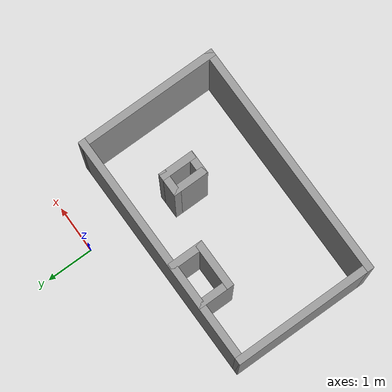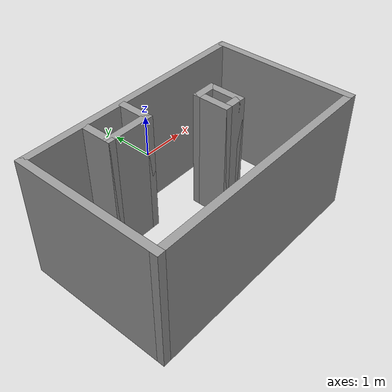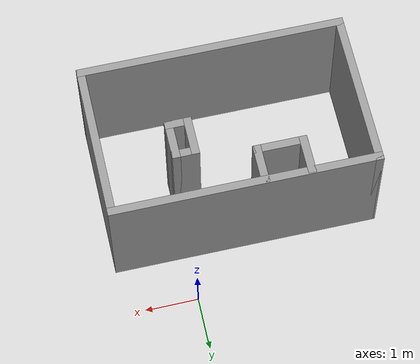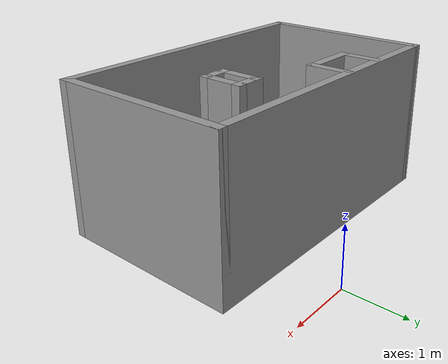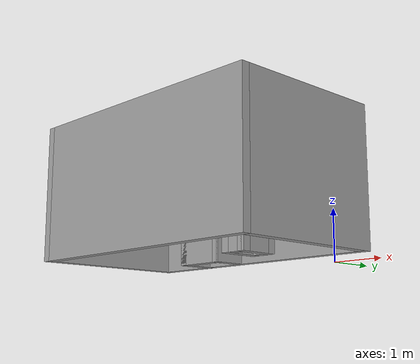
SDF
<?xml version='1.0'?>
<sdf version='1.7'>
  <model name='my_lab_world'>
    <pose>-1.11448 -1.93609 0 0 -0 0</pose>
    <link name='Wall_10'>
      <collision name='Wall_10_Collision'>
        <geometry>
          <box>
            <size>0.75 0.15 2.5</size>
          </box>
        </geometry>
        <pose>0 0 1.25 0 -0 0</pose>
      </collision>
      <visual name='Wall_10_Visual'>
        <pose>0 0 1.25 0 -0 0</pose>
        <geometry>
          <box>
            <size>0.75 0.15 2.5</size>
          </box>
        </geometry>
        <material>
          <script>
            <uri>file://media/materials/scripts/gazebo.material</uri>
            <name>Gazebo/Grey</name>
          </script>
          <ambient>1 1 1 1</ambient>
        </material>
        <meta>
          <layer>0</layer>
        </meta>
      </visual>
      <pose>-1.195 0.668913 0 0 -0 -1.5708</pose>
    </link>
    <link name='Wall_11'>
      <collision name='Wall_11_Collision'>
        <geometry>
          <box>
            <size>1 0.15 2.5</size>
          </box>
        </geometry>
        <pose>0 0 1.25 0 -0 0</pose>
      </collision>
      <visual name='Wall_11_Visual'>
        <pose>0 0 1.25 0 -0 0</pose>
        <geometry>
          <box>
            <size>1 0.15 2.5</size>
          </box>
        </geometry>
        <material>
          <script>
            <uri>file://media/materials/scripts/gazebo.material</uri>
            <name>Gazebo/Grey</name>
          </script>
          <ambient>1 1 1 1</ambient>
        </material>
        <meta>
          <layer>0</layer>
        </meta>
      </visual>
      <pose>-0.77 0.368913 0 0 -0 0</pose>
    </link>
    <link name='Wall_12'>
      <collision name='Wall_12_Collision'>
        <geometry>
          <box>
            <size>0.75 0.15 2.5</size>
          </box>
        </geometry>
        <pose>0 0 1.25 0 -0 0</pose>
      </collision>
      <visual name='Wall_12_Visual'>
        <pose>0 0 1.25 0 -0 0</pose>
        <geometry>
          <box>
            <size>0.75 0.15 2.5</size>
          </box>
        </geometry>
        <material>
          <script>
            <uri>file://media/materials/scripts/gazebo.material</uri>
            <name>Gazebo/Grey</name>
          </script>
          <ambient>1 1 1 1</ambient>
        </material>
        <meta>
          <layer>0</layer>
        </meta>
      </visual>
      <pose>-0.345 0.668913 0 0 -0 1.5708</pose>
    </link>
    <link name='Wall_18'>
      <collision name='Wall_18_Collision'>
        <geometry>
          <box>
            <size>0.75 0.15 2.5</size>
          </box>
        </geometry>
        <pose>0 0 1.25 0 -0 0</pose>
      </collision>
      <visual name='Wall_18_Visual'>
        <pose>0 0 1.25 0 -0 0</pose>
        <geometry>
          <box>
            <size>0.75 0.15 2.5</size>
          </box>
        </geometry>
        <material>
          <script>
            <uri>file://media/materials/scripts/gazebo.material</uri>
            <name>Gazebo/Grey</name>
          </script>
          <ambient>1 1 1 1</ambient>
        </material>
        <meta>
          <layer>0</layer>
        </meta>
      </visual>
      <pose>0.740483 -0.156187 0 0 -0 -1.5708</pose>
    </link>
    <link name='Wall_19'>
      <collision name='Wall_19_Collision'>
        <geometry>
          <box>
            <size>0.5 0.15 2.5</size>
          </box>
        </geometry>
        <pose>0 0 1.25 0 -0 0</pose>
      </collision>
      <visual name='Wall_19_Visual'>
        <pose>0 0 1.25 0 -0 0</pose>
        <geometry>
          <box>
            <size>0.5 0.15 2.5</size>
          </box>
        </geometry>
        <material>
          <script>
            <uri>file://media/materials/scripts/gazebo.material</uri>
            <name>Gazebo/Grey</name>
          </script>
          <ambient>1 1 1 1</ambient>
        </material>
        <meta>
          <layer>0</layer>
        </meta>
      </visual>
      <pose>0.915483 -0.456187 0 0 -0 0</pose>
    </link>
    <link name='Wall_20'>
      <collision name='Wall_20_Collision'>
        <geometry>
          <box>
            <size>0.75 0.15 2.5</size>
          </box>
        </geometry>
        <pose>0 0 1.25 0 -0 0</pose>
      </collision>
      <visual name='Wall_20_Visual'>
        <pose>0 0 1.25 0 -0 0</pose>
        <geometry>
          <box>
            <size>0.75 0.15 2.5</size>
          </box>
        </geometry>
        <material>
          <script>
            <uri>file://media/materials/scripts/gazebo.material</uri>
            <name>Gazebo/Grey</name>
          </script>
          <ambient>1 1 1 1</ambient>
        </material>
        <meta>
          <layer>0</layer>
        </meta>
      </visual>
      <pose>1.09048 -0.156187 0 0 -0 1.5708</pose>
    </link>
    <link name='Wall_21'>
      <collision name='Wall_21_Collision'>
        <geometry>
          <box>
            <size>0.5 0.15 2.5</size>
          </box>
        </geometry>
        <pose>0 0 1.25 0 -0 0</pose>
      </collision>
      <visual name='Wall_21_Visual'>
        <pose>0 0 1.25 0 -0 0</pose>
        <geometry>
          <box>
            <size>0.5 0.15 2.5</size>
          </box>
        </geometry>
        <material>
          <script>
            <uri>file://media/materials/scripts/gazebo.material</uri>
            <name>Gazebo/Grey</name>
          </script>
          <ambient>1 1 1 1</ambient>
        </material>
        <meta>
          <layer>0</layer>
        </meta>
      </visual>
      <pose>0.915483 0.143813 0 0 -0 3.14159</pose>
    </link>
    <link name='Wall_5'>
      <collision name='Wall_5_Collision'>
        <geometry>
          <box>
            <size>5 0.15 2.5</size>
          </box>
        </geometry>
        <pose>0 0 1.25 0 -0 0</pose>
      </collision>
      <visual name='Wall_5_Visual'>
        <pose>0 0 1.25 0 -0 0</pose>
        <geometry>
          <box>
            <size>5 0.15 2.5</size>
          </box>
        </geometry>
        <material>
          <script>
            <uri>file://media/materials/scripts/gazebo.material</uri>
            <name>Gazebo/Grey</name>
          </script>
          <ambient>1 1 1 1</ambient>
        </material>
        <meta>
          <layer>0</layer>
        </meta>
      </visual>
      <pose>0 0.988913 0 0 -0 0</pose>
    </link>
    <link name='Wall_6'>
      <collision name='Wall_6_Collision'>
        <geometry>
          <box>
            <size>3 0.15 2.5</size>
          </box>
        </geometry>
        <pose>0 0 1.25 0 -0 0</pose>
      </collision>
      <visual name='Wall_6_Visual'>
        <pose>0 0 1.25 0 -0 0</pose>
        <geometry>
          <box>
            <size>3 0.15 2.5</size>
          </box>
        </geometry>
        <material>
          <script>
            <uri>file://media/materials/scripts/gazebo.material</uri>
            <name>Gazebo/Grey</name>
          </script>
          <ambient>1 1 1 1</ambient>
        </material>
        <meta>
          <layer>0</layer>
        </meta>
      </visual>
      <pose>2.425 -0.436087 0 0 -0 -1.5708</pose>
    </link>
    <link name='Wall_7'>
      <collision name='Wall_7_Collision'>
        <geometry>
          <box>
            <size>5 0.15 2.5</size>
          </box>
        </geometry>
        <pose>0 0 1.25 0 -0 0</pose>
      </collision>
      <visual name='Wall_7_Visual'>
        <pose>0 0 1.25 0 -0 0</pose>
        <geometry>
          <box>
            <size>5 0.15 2.5</size>
          </box>
        </geometry>
        <material>
          <script>
            <uri>file://media/materials/scripts/gazebo.material</uri>
            <name>Gazebo/Grey</name>
          </script>
          <ambient>1 1 1 1</ambient>
        </material>
        <meta>
          <layer>0</layer>
        </meta>
      </visual>
      <pose>0 -1.86109 0 0 -0 3.14159</pose>
    </link>
    <link name='Wall_8'>
      <collision name='Wall_8_Collision'>
        <geometry>
          <box>
            <size>3 0.15 2.5</size>
          </box>
        </geometry>
        <pose>0 0 1.25 0 -0 0</pose>
      </collision>
      <visual name='Wall_8_Visual'>
        <pose>0 0 1.25 0 -0 0</pose>
        <geometry>
          <box>
            <size>3 0.15 2.5</size>
          </box>
        </geometry>
        <material>
          <script>
            <uri>file://media/materials/scripts/gazebo.material</uri>
            <name>Gazebo/Grey</name>
          </script>
          <ambient>1 1 1 1</ambient>
        </material>
        <meta>
          <layer>0</layer>
        </meta>
      </visual>
      <pose>-2.425 -0.436087 0 0 -0 1.5708</pose>
    </link>
    <static>1</static>
  </model>
</sdf>
